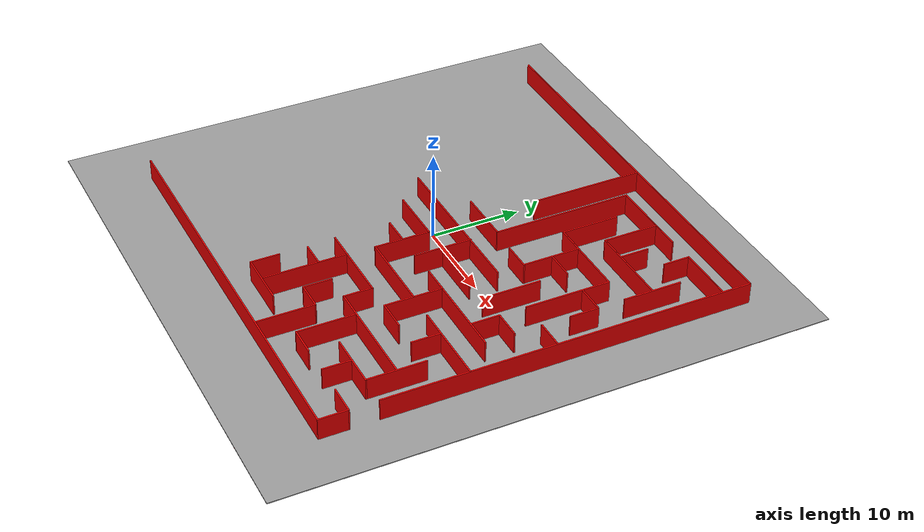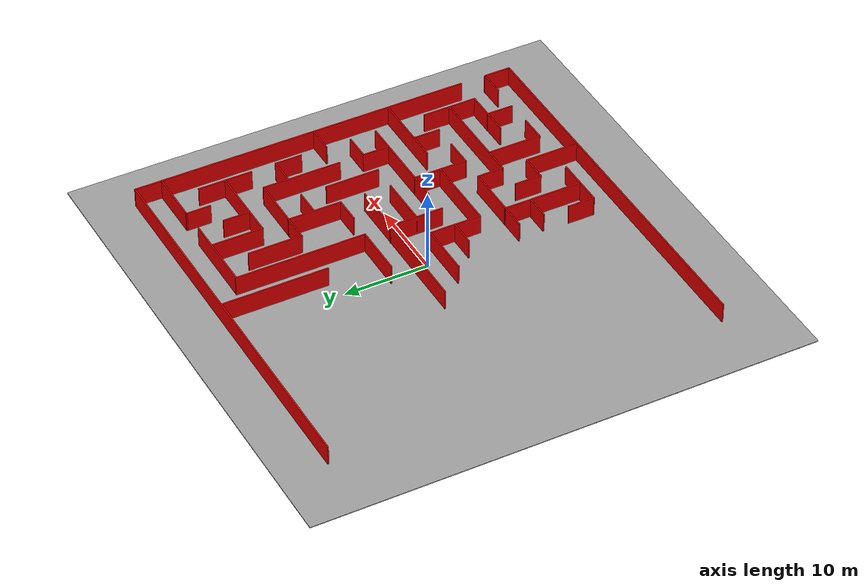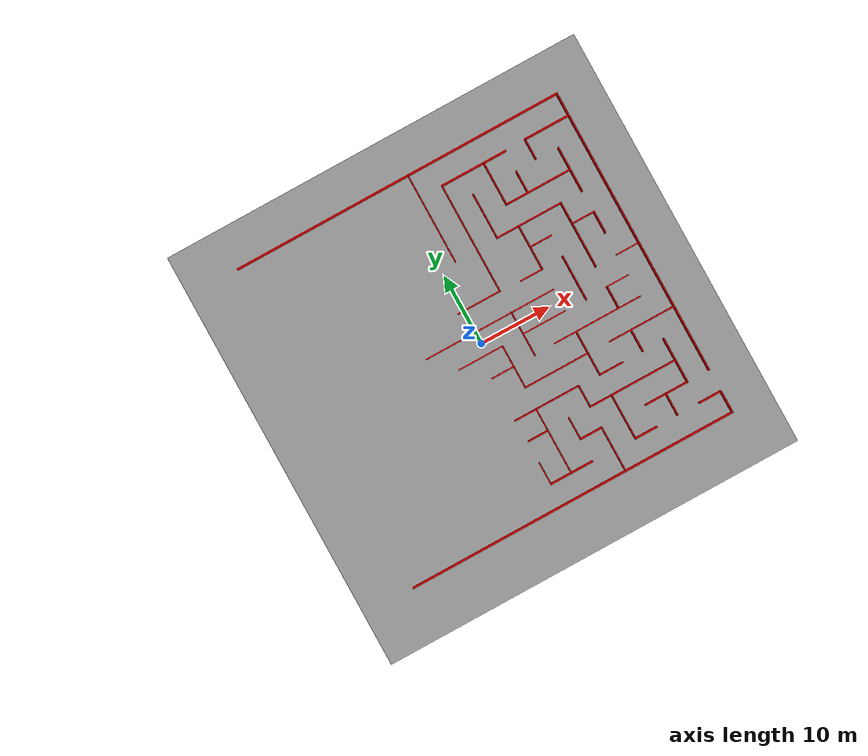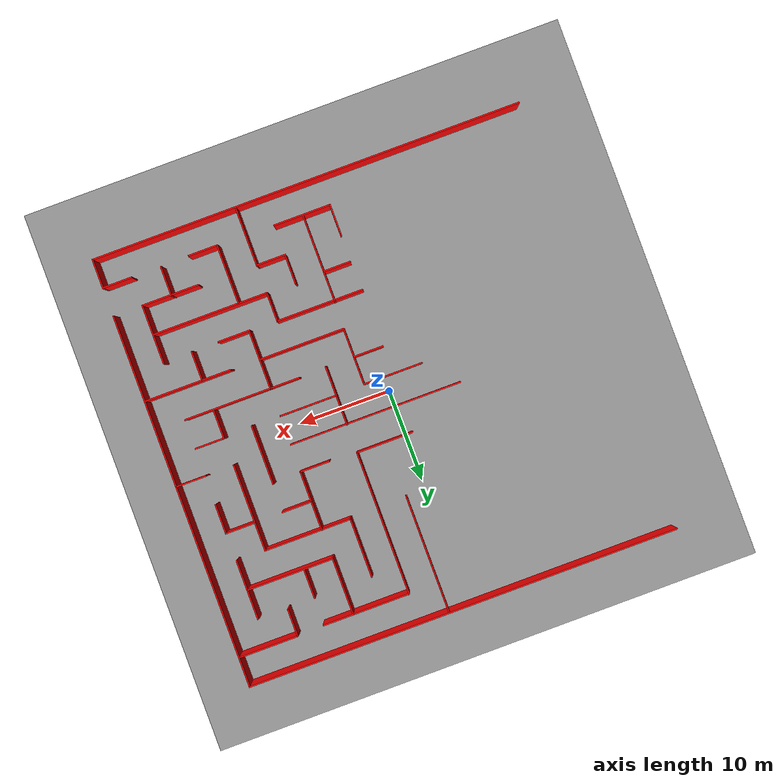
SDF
<sdf version="1.6">
 <world name="default">
  <model name="Final_Maze">
   <pose>-1.35978 -0.782493 0 0 -0 0</pose>
   <link name="Floor_0">
    <collision name="Floor_0_Collision">
     <geometry><box><size>60 60.01 0.1</size></box></geometry>
     <pose>0 0 0.05 0 -0 0</pose>
    </collision>
    <visual name="Floor_0_Visual">
     <pose>0 0 0.05 0 -0 0</pose>
     <geometry><box><size>60 60.01 0.1</size></box></geometry>
     <material>
      <script><uri>file://media/materials/scripts/gazebo.material</uri><name>Gazebo/Grey</name></script>
      <ambient>0 0 0 1</ambient>
     </material>
     <meta><layer>1</layer></meta>
    </visual>
    <pose>1.10022 0.122508 0.001 0 -0 0</pose>
   </link>
   <link name="Wall_10">
    <collision name="Wall_10_Collision">
     <geometry><box><size>47 0.15 2.5</size></box></geometry>
     <pose>0 0 1.25 0 -0 0</pose>
    </collision>
    <visual name="Wall_10_Visual">
     <pose>0 0 1.25 0 -0 0</pose>
     <geometry><box><size>47 0.15 2.5</size></box></geometry>
     <material>
      <script><uri>file://media/materials/scripts/gazebo.material</uri><name>Gazebo/Grey</name></script>
      <ambient>1 0 0 1</ambient>
     </material>
     <meta><layer>1</layer></meta>
    </visual>
    <pose>1.9402 -22.4994 0.001 0 -0 0</pose>
   </link>
   <link name="Wall_108">
    <collision name="Wall_108_Collision">
     <geometry><box><size>18.75 0.15 2.5</size></box></geometry>
     <pose>0 0 1.25 0 -0 0</pose>
    </collision>
    <visual name="Wall_108_Visual">
     <pose>0 0 1.25 0 -0 0</pose>
     <geometry><box><size>18.75 0.15 2.5</size></box></geometry>
     <material>
      <script><uri>file://media/materials/scripts/gazebo.material</uri><name>Gazebo/Grey</name></script>
      <ambient>1 0 0 1</ambient>
     </material>
     <meta><layer>1</layer></meta>
    </visual>
    <pose>3.48106 2.46818 0.001 0 -0 0</pose>
   </link>
   <link name="Wall_11">
    <collision name="Wall_11_Collision">
     <geometry><box><size>3.25 0.15 2.5</size></box></geometry>
     <pose>0 0 1.25 0 -0 0</pose>
    </collision>
    <visual name="Wall_11_Visual">
     <pose>0 0 1.25 0 -0 0</pose>
     <geometry><box><size>3.25 0.15 2.5</size></box></geometry>
     <material>
      <script><uri>file://media/materials/scripts/gazebo.material</uri><name>Gazebo/Grey</name></script>
      <ambient>1 0 0 1</ambient>
     </material>
     <meta><layer>1</layer></meta>
    </visual>
    <pose>25.3652 -20.9494 0.001 0 -0 1.5708</pose>
   </link>
   <link name="Wall_110">
    <collision name="Wall_110_Collision">
     <geometry><box><size>6.5 0.15 2.5</size></box></geometry>
     <pose>0 0 1.25 0 -0 0</pose>
    </collision>
    <visual name="Wall_110_Visual">
     <pose>0 0 1.25 0 -0 0</pose>
     <geometry><box><size>6.5 0.15 2.5</size></box></geometry>
     <material>
      <script><uri>file://media/materials/scripts/gazebo.material</uri><name>Gazebo/Grey</name></script>
      <ambient>1 0 0 1</ambient>
     </material>
     <meta><layer>1</layer></meta>
    </visual>
    <pose>6.64947 -0.643191 0.001 0 -0 -1.5708</pose>
   </link>
   <link name="Wall_112">
    <collision name="Wall_112_Collision">
     <geometry><box><size>6.25 0.15 2.5</size></box></geometry>
     <pose>0 0 1.25 0 -0 0</pose>
    </collision>
    <visual name="Wall_112_Visual">
     <pose>0 0 1.25 0 -0 0</pose>
     <geometry><box><size>6.25 0.15 2.5</size></box></geometry>
     <material>
      <script><uri>file://media/materials/scripts/gazebo.material</uri><name>Gazebo/Grey</name></script>
      <ambient>1 0 0 1</ambient>
     </material>
     <meta><layer>1</layer></meta>
    </visual>
    <pose>9.69947 -0.678341 0.001 0 -0 0</pose>
   </link>
   <link name="Wall_114">
    <collision name="Wall_114_Collision">
     <geometry><box><size>6.5 0.15 2.5</size></box></geometry>
     <pose>0 0 1.25 0 -0 0</pose>
    </collision>
    <visual name="Wall_114_Visual">
     <pose>0 0 1.25 0 -0 0</pose>
     <geometry><box><size>6.5 0.15 2.5</size></box></geometry>
     <material>
      <script><uri>file://media/materials/scripts/gazebo.material</uri><name>Gazebo/Grey</name></script>
      <ambient>1 0 0 1</ambient>
     </material>
     <meta><layer>1</layer></meta>
    </visual>
    <pose>15.9026 2.43389 0.001 0 -0 -1.5708</pose>
   </link>
   <link name="Wall_116">
    <collision name="Wall_116_Collision">
     <geometry><box><size>6.25 0.15 2.5</size></box></geometry>
     <pose>0 0 1.25 0 -0 0</pose>
    </collision>
    <visual name="Wall_116_Visual">
     <pose>0 0 1.25 0 -0 0</pose>
     <geometry><box><size>6.25 0.15 2.5</size></box></geometry>
     <material>
      <script><uri>file://media/materials/scripts/gazebo.material</uri><name>Gazebo/Grey</name></script>
      <ambient>1 0 0 1</ambient>
     </material>
     <meta><layer>1</layer></meta>
    </visual>
    <pose>3.63212 5.60889 0.001 0 -0 0</pose>
   </link>
   <link name="Wall_117">
    <collision name="Wall_117_Collision">
     <geometry><box><size>15.6407 0.15 2.5</size></box></geometry>
     <pose>0 0 1.25 0 -0 0</pose>
    </collision>
    <visual name="Wall_117_Visual">
     <pose>0 0 1.25 0 -0 0</pose>
     <geometry><box><size>15.6407 0.15 2.5</size></box></geometry>
     <material>
      <script><uri>file://media/materials/scripts/gazebo.material</uri><name>Gazebo/Grey</name></script>
      <ambient>1 0 0 1</ambient>
     </material>
     <meta><layer>1</layer></meta>
    </visual>
    <pose>6.68212 13.3542 0.001 0 -0 1.5708</pose>
   </link>
   <link name="Wall_118">
    <collision name="Wall_118_Collision">
     <geometry><box><size>9.5 0.15 2.5</size></box></geometry>
     <pose>0 0 1.25 0 -0 0</pose>
    </collision>
    <visual name="Wall_118_Visual">
     <pose>0 0 1.25 0 -0 0</pose>
     <geometry><box><size>9.5 0.15 2.5</size></box></geometry>
     <material>
      <script><uri>file://media/materials/scripts/gazebo.material</uri><name>Gazebo/Grey</name></script>
      <ambient>1 0 0 1</ambient>
     </material>
     <meta><layer>1</layer></meta>
    </visual>
    <pose>11.3571 21.0644 0.001 0 -0 0</pose>
   </link>
   <link name="Wall_12">
    <collision name="Wall_12_Collision">
     <geometry><box><size>3.25 0.15 2.5</size></box></geometry>
     <pose>0 0 1.25 0 -0 0</pose>
    </collision>
    <visual name="Wall_12_Visual">
     <pose>0 0 1.25 0 -0 0</pose>
     <geometry><box><size>3.25 0.15 2.5</size></box></geometry>
     <material>
      <script><uri>file://media/materials/scripts/gazebo.material</uri><name>Gazebo/Grey</name></script>
      <ambient>1 0 0 1</ambient>
     </material>
     <meta><layer>1</layer></meta>
    </visual>
    <pose>23.8152 -19.3994 0.001 0 -0 3.14159</pose>
   </link>
   <link name="Wall_120">
    <collision name="Wall_120_Collision">
     <geometry><box><size>3 0.15 2.5</size></box></geometry>
     <pose>0 0 1.25 0 -0 0</pose>
    </collision>
    <visual name="Wall_120_Visual">
     <pose>0 0 1.25 0 -0 0</pose>
     <geometry><box><size>3 0.15 2.5</size></box></geometry>
     <material>
      <script><uri>file://media/materials/scripts/gazebo.material</uri><name>Gazebo/Grey</name></script>
      <ambient>1 0 0 1</ambient>
     </material>
     <meta><layer>1</layer></meta>
    </visual>
    <pose>18.9322 19.7481 0.001 0 -0 1.5708</pose>
   </link>
   <link name="Wall_123">
    <collision name="Wall_123_Collision">
     <geometry><box><size>6.5 0.15 2.5</size></box></geometry>
     <pose>0 0 1.25 0 -0 0</pose>
    </collision>
    <visual name="Wall_123_Visual">
     <pose>0 0 1.25 0 -0 0</pose>
     <geometry><box><size>6.5 0.15 2.5</size></box></geometry>
     <material>
      <script><uri>file://media/materials/scripts/gazebo.material</uri><name>Gazebo/Grey</name></script>
      <ambient>1 0 0 1</ambient>
     </material>
     <meta><layer>1</layer></meta>
    </visual>
    <pose>22.1067 21.1714 0.001 0 -0 3.14159</pose>
   </link>
   <link name="Wall_125">
    <collision name="Wall_125_Collision">
     <geometry><box><size>6.25 0.15 2.5</size></box></geometry>
     <pose>0 0 1.25 0 -0 0</pose>
    </collision>
    <visual name="Wall_125_Visual">
     <pose>0 0 1.25 0 -0 0</pose>
     <geometry><box><size>6.25 0.15 2.5</size></box></geometry>
     <material>
      <script><uri>file://media/materials/scripts/gazebo.material</uri><name>Gazebo/Grey</name></script>
      <ambient>1 0 0 1</ambient>
     </material>
     <meta><layer>1</layer></meta>
    </visual>
    <pose>12.7989 18.0067 0.001 0 -0 -1.5708</pose>
   </link>
   <link name="Wall_126">
    <collision name="Wall_126_Collision">
     <geometry><box><size>9.5 0.15 2.5</size></box></geometry>
     <pose>0 0 1.25 0 -0 0</pose>
    </collision>
    <visual name="Wall_126_Visual">
     <pose>0 0 1.25 0 -0 0</pose>
     <geometry><box><size>9.5 0.15 2.5</size></box></geometry>
     <material>
      <script><uri>file://media/materials/scripts/gazebo.material</uri><name>Gazebo/Grey</name></script>
      <ambient>1 0 0 1</ambient>
     </material>
     <meta><layer>1</layer></meta>
    </visual>
    <pose>17.4739 14.9567 0.001 0 -0 0</pose>
   </link>
   <link name="Wall_128">
    <collision name="Wall_128_Collision">
     <geometry><box><size>3.25 0.15 2.5</size></box></geometry>
     <pose>0 0 1.25 0 -0 0</pose>
    </collision>
    <visual name="Wall_128_Visual">
     <pose>0 0 1.25 0 -0 0</pose>
     <geometry><box><size>3.25 0.15 2.5</size></box></geometry>
     <material>
      <script><uri>file://media/materials/scripts/gazebo.material</uri><name>Gazebo/Grey</name></script>
      <ambient>1 0 0 1</ambient>
     </material>
     <meta><layer>1</layer></meta>
    </visual>
    <pose>15.9497 16.5394 0.001 0 -0 -1.5708</pose>
   </link>
   <link name="Wall_130">
    <collision name="Wall_130_Collision">
     <geometry><box><size>6.5 0.15 2.5</size></box></geometry>
     <pose>0 0 1.25 0 -0 0</pose>
    </collision>
    <visual name="Wall_130_Visual">
     <pose>0 0 1.25 0 -0 0</pose>
     <geometry><box><size>6.5 0.15 2.5</size></box></geometry>
     <material>
      <script><uri>file://media/materials/scripts/gazebo.material</uri><name>Gazebo/Grey</name></script>
      <ambient>1 0 0 1</ambient>
     </material>
     <meta><layer>1</layer></meta>
    </visual>
    <pose>22.1595 14.945 0.001 0 -0 -1.5708</pose>
   </link>
   <link name="Wall_132">
    <collision name="Wall_132_Collision">
     <geometry><box><size>6.5 0.15 2.5</size></box></geometry>
     <pose>0 0 1.25 0 -0 0</pose>
    </collision>
    <visual name="Wall_132_Visual">
     <pose>0 0 1.25 0 -0 0</pose>
     <geometry><box><size>6.5 0.15 2.5</size></box></geometry>
     <material>
      <script><uri>file://media/materials/scripts/gazebo.material</uri><name>Gazebo/Grey</name></script>
      <ambient>1 0 0 1</ambient>
     </material>
     <meta><layer>1</layer></meta>
    </visual>
    <pose>9.67868 14.945 0.001 0 -0 -1.5708</pose>
   </link>
   <link name="Wall_133">
    <collision name="Wall_133_Collision">
     <geometry><box><size>9.5 0.15 2.5</size></box></geometry>
     <pose>0 0 1.25 0 -0 0</pose>
    </collision>
    <visual name="Wall_133_Visual">
     <pose>0 0 1.25 0 -0 0</pose>
     <geometry><box><size>9.5 0.15 2.5</size></box></geometry>
     <material>
      <script><uri>file://media/materials/scripts/gazebo.material</uri><name>Gazebo/Grey</name></script>
      <ambient>1 0 0 1</ambient>
     </material>
     <meta><layer>1</layer></meta>
    </visual>
    <pose>14.3537 11.77 0.001 0 -0 0</pose>
   </link>
   <link name="Wall_134">
    <collision name="Wall_134_Collision">
     <geometry><box><size>9.5 0.15 2.5</size></box></geometry>
     <pose>0 0 1.25 0 -0 0</pose>
    </collision>
    <visual name="Wall_134_Visual">
     <pose>0 0 1.25 0 -0 0</pose>
     <geometry><box><size>9.5 0.15 2.5</size></box></geometry>
     <material>
      <script><uri>file://media/materials/scripts/gazebo.material</uri><name>Gazebo/Grey</name></script>
      <ambient>1 0 0 1</ambient>
     </material>
     <meta><layer>1</layer></meta>
    </visual>
    <pose>19.0287 7.09502 0.001 0 -0 -1.5708</pose>
   </link>
   <link name="Wall_153">
    <collision name="Wall_153_Collision">
     <geometry><box><size>6.5 0.15 2.5</size></box></geometry>
     <pose>0 0 1.25 0 -0 0</pose>
    </collision>
    <visual name="Wall_153_Visual">
     <pose>0 0 1.25 0 -0 0</pose>
     <geometry><box><size>6.5 0.15 2.5</size></box></geometry>
     <material>
      <script><uri>file://media/materials/scripts/gazebo.material</uri><name>Gazebo/Grey</name></script>
      <ambient>1 0 0 1</ambient>
     </material>
     <meta><layer>1</layer></meta>
    </visual>
    <pose>12.8337 8.61794 0.001 0 -0 -1.5708</pose>
   </link>
   <link name="Wall_154">
    <collision name="Wall_154_Collision">
     <geometry><box><size>3.25 0.15 2.5</size></box></geometry>
     <pose>0 0 1.25 0 -0 0</pose>
    </collision>
    <visual name="Wall_154_Visual">
     <pose>0 0 1.25 0 -0 0</pose>
     <geometry><box><size>3.25 0.15 2.5</size></box></geometry>
     <material>
      <script><uri>file://media/materials/scripts/gazebo.material</uri><name>Gazebo/Grey</name></script>
      <ambient>1 0 0 1</ambient>
     </material>
     <meta><layer>1</layer></meta>
    </visual>
    <pose>11.2837 5.44294 0.001 0 -0 3.14159</pose>
   </link>
   <link name="Wall_156">
    <collision name="Wall_156_Collision">
     <geometry><box><size>3.25 0.15 2.5</size></box></geometry>
     <pose>0 0 1.25 0 -0 0</pose>
    </collision>
    <visual name="Wall_156_Visual">
     <pose>0 0 1.25 0 -0 0</pose>
     <geometry><box><size>3.25 0.15 2.5</size></box></geometry>
     <material>
      <script><uri>file://media/materials/scripts/gazebo.material</uri><name>Gazebo/Grey</name></script>
      <ambient>1 0 0 1</ambient>
     </material>
     <meta><layer>1</layer></meta>
    </visual>
    <pose>14.4239 8.69545 0.001 0 -0 0</pose>
   </link>
   <link name="Wall_18">
    <collision name="Wall_18_Collision">
     <geometry><box><size>3.25 0.15 2.5</size></box></geometry>
     <pose>0 0 1.25 0 -0 0</pose>
    </collision>
    <visual name="Wall_18_Visual">
     <pose>0 0 1.25 0 -0 0</pose>
     <geometry><box><size>3.25 0.15 2.5</size></box></geometry>
     <material>
      <script><uri>file://media/materials/scripts/gazebo.material</uri><name>Gazebo/Grey</name></script>
      <ambient>1 0 0 1</ambient>
     </material>
     <meta><layer>1</layer></meta>
    </visual>
    <pose>0.452914 -17.7919 0.001 0 -0 -1.5708</pose>
   </link>
   <link name="Wall_184">
    <collision name="Wall_184_Collision">
     <geometry><box><size>12.75 0.15 2.5</size></box></geometry>
     <pose>0 0 1.25 0 -0 0</pose>
    </collision>
    <visual name="Wall_184_Visual">
     <pose>0 0 1.25 0 -0 0</pose>
     <geometry><box><size>12.75 0.15 2.5</size></box></geometry>
     <material>
      <script><uri>file://media/materials/scripts/gazebo.material</uri><name>Gazebo/Grey</name></script>
      <ambient>1 0 0 1</ambient>
     </material>
     <meta><layer>1</layer></meta>
    </visual>
    <pose>3.48419 18.0248 0.001 0 -0 -1.5708</pose>
   </link>
   <link name="Wall_186">
    <collision name="Wall_186_Collision">
     <geometry><box><size>3.25 0.15 2.5</size></box></geometry>
     <pose>0 0 1.25 0 -0 0</pose>
    </collision>
    <visual name="Wall_186_Visual">
     <pose>0 0 1.25 0 -0 0</pose>
     <geometry><box><size>3.25 0.15 2.5</size></box></geometry>
     <material>
      <script><uri>file://media/materials/scripts/gazebo.material</uri><name>Gazebo/Grey</name></script>
      <ambient>1 0 0 1</ambient>
     </material>
     <meta><layer>1</layer></meta>
    </visual>
    <pose>20.6558 8.72552 0.001 0 -0 0</pose>
   </link>
   <link name="Wall_187">
    <collision name="Wall_187_Collision">
     <geometry><box><size>3.25 0.15 2.5</size></box></geometry>
     <pose>0 0 1.25 0 -0 0</pose>
    </collision>
    <visual name="Wall_187_Visual">
     <pose>0 0 1.25 0 -0 0</pose>
     <geometry><box><size>3.25 0.15 2.5</size></box></geometry>
     <material>
      <script><uri>file://media/materials/scripts/gazebo.material</uri><name>Gazebo/Grey</name></script>
      <ambient>1 0 0 1</ambient>
     </material>
     <meta><layer>1</layer></meta>
    </visual>
    <pose>22.2058 7.17552 0.001 0 -0 -1.5708</pose>
   </link>
   <link name="Wall_189">
    <collision name="Wall_189_Collision">
     <geometry><box><size>3.25 0.15 2.5</size></box></geometry>
     <pose>0 0 1.25 0 -0 0</pose>
    </collision>
    <visual name="Wall_189_Visual">
     <pose>0 0 1.25 0 -0 0</pose>
     <geometry><box><size>3.25 0.15 2.5</size></box></geometry>
     <material>
      <script><uri>file://media/materials/scripts/gazebo.material</uri><name>Gazebo/Grey</name></script>
      <ambient>1 0 0 1</ambient>
     </material>
     <meta><layer>1</layer></meta>
    </visual>
    <pose>23.7224 2.46009 0.001 0 -0 3.14159</pose>
   </link>
   <link name="Wall_19">
    <collision name="Wall_19_Collision">
     <geometry><box><size>6.25 0.15 2.5</size></box></geometry>
     <pose>0 0 1.25 0 -0 0</pose>
    </collision>
    <visual name="Wall_19_Visual">
     <pose>0 0 1.25 0 -0 0</pose>
     <geometry><box><size>6.25 0.15 2.5</size></box></geometry>
     <material>
      <script><uri>file://media/materials/scripts/gazebo.material</uri><name>Gazebo/Grey</name></script>
      <ambient>1 0 0 1</ambient>
     </material>
     <meta><layer>1</layer></meta>
    </visual>
    <pose>3.50291 -19.3419 0.001 0 -0 0</pose>
   </link>
   <link name="Wall_2">
    <collision name="Wall_2_Collision">
     <geometry><box><size>60.01 60 0.001</size></box></geometry>
     <pose>0 0 0.0005 0 -0 0</pose>
    </collision>
    <visual name="Wall_2_Visual">
     <pose>0 0 0.0005 0 -0 0</pose>
     <geometry><box><size>60.01 60 0.001</size></box></geometry>
     <material>
      <script><uri>file://media/materials/scripts/gazebo.material</uri><name>Gazebo/Grey</name></script>
      <ambient>1 0 0 1</ambient>
     </material>
     <meta><layer>1</layer></meta>
    </visual>
    <pose>1.10022 0.122508 0.001 0 -0 -1.5708</pose>
   </link>
   <link name="Wall_24">
    <collision name="Wall_24_Collision">
     <geometry><box><size>3.25 0.15 2.5</size></box></geometry>
     <pose>0 0 1.25 0 -0 0</pose>
    </collision>
    <visual name="Wall_24_Visual">
     <pose>0 0 1.25 0 -0 0</pose>
     <geometry><box><size>3.25 0.15 2.5</size></box></geometry>
     <material>
      <script><uri>file://media/materials/scripts/gazebo.material</uri><name>Gazebo/Grey</name></script>
      <ambient>1 0 0 1</ambient>
     </material>
     <meta><layer>1</layer></meta>
    </visual>
    <pose>6.5839 -14.5575 0.001 0 -0 -1.5708</pose>
   </link>
   <link name="Wall_25">
    <collision name="Wall_25_Collision">
     <geometry><box><size>3.25 0.15 2.5</size></box></geometry>
     <pose>0 0 1.25 0 -0 0</pose>
    </collision>
    <visual name="Wall_25_Visual">
     <pose>0 0 1.25 0 -0 0</pose>
     <geometry><box><size>3.25 0.15 2.5</size></box></geometry>
     <material>
      <script><uri>file://media/materials/scripts/gazebo.material</uri><name>Gazebo/Grey</name></script>
      <ambient>1 0 0 1</ambient>
     </material>
     <meta><layer>1</layer></meta>
    </visual>
    <pose>8.13391 -16.1075 0.001 0 -0 0</pose>
   </link>
   <link name="Wall_26">
    <collision name="Wall_26_Collision">
     <geometry><box><size>6.5 0.15 2.5</size></box></geometry>
     <pose>0 0 1.25 0 -0 0</pose>
    </collision>
    <visual name="Wall_26_Visual">
     <pose>0 0 1.25 0 -0 0</pose>
     <geometry><box><size>6.5 0.15 2.5</size></box></geometry>
     <material>
      <script><uri>file://media/materials/scripts/gazebo.material</uri><name>Gazebo/Grey</name></script>
      <ambient>1 0 0 1</ambient>
     </material>
     <meta><layer>1</layer></meta>
    </visual>
    <pose>9.6839 -19.2825 0.001 0 -0 -1.5708</pose>
   </link>
   <link name="Wall_28">
    <collision name="Wall_28_Collision">
     <geometry><box><size>9.5 0.15 2.5</size></box></geometry>
     <pose>0 0 1.25 0 -0 0</pose>
    </collision>
    <visual name="Wall_28_Visual">
     <pose>0 0 1.25 0 -0 0</pose>
     <geometry><box><size>9.5 0.15 2.5</size></box></geometry>
     <material>
      <script><uri>file://media/materials/scripts/gazebo.material</uri><name>Gazebo/Grey</name></script>
      <ambient>1 0 0 1</ambient>
     </material>
     <meta><layer>1</layer></meta>
    </visual>
    <pose>3.43569 -14.6042 0.001 0 -0 -1.5708</pose>
   </link>
   <link name="Wall_30">
    <collision name="Wall_30_Collision">
     <geometry><box><size>3 0.15 2.5</size></box></geometry>
     <pose>0 0 1.25 0 -0 0</pose>
    </collision>
    <visual name="Wall_30_Visual">
     <pose>0 0 1.25 0 -0 0</pose>
     <geometry><box><size>3 0.15 2.5</size></box></geometry>
     <material>
      <script><uri>file://media/materials/scripts/gazebo.material</uri><name>Gazebo/Grey</name></script>
      <ambient>1 0 0 1</ambient>
     </material>
     <meta><layer>1</layer></meta>
    </visual>
    <pose>1.97571 -13.1124 0.001 0 -0 3.14159</pose>
   </link>
   <link name="Wall_33">
    <collision name="Wall_33_Collision">
     <geometry><box><size>9.5 0.15 2.5</size></box></geometry>
     <pose>0 0 1.25 0 -0 0</pose>
    </collision>
    <visual name="Wall_33_Visual">
     <pose>0 0 1.25 0 -0 0</pose>
     <geometry><box><size>9.5 0.15 2.5</size></box></geometry>
     <material>
      <script><uri>file://media/materials/scripts/gazebo.material</uri><name>Gazebo/Grey</name></script>
      <ambient>1 0 0 1</ambient>
     </material>
     <meta><layer>1</layer></meta>
    </visual>
    <pose>5.01451 -9.96309 0.001 0 -0 0</pose>
   </link>
   <link name="Wall_34">
    <collision name="Wall_34_Collision">
     <geometry><box><size>3.25 0.15 2.5</size></box></geometry>
     <pose>0 0 1.25 0 -0 0</pose>
    </collision>
    <visual name="Wall_34_Visual">
     <pose>0 0 1.25 0 -0 0</pose>
     <geometry><box><size>3.25 0.15 2.5</size></box></geometry>
     <material>
      <script><uri>file://media/materials/scripts/gazebo.material</uri><name>Gazebo/Grey</name></script>
      <ambient>1 0 0 1</ambient>
     </material>
     <meta><layer>1</layer></meta>
    </visual>
    <pose>9.68951 -11.5131 0.001 0 -0 -1.5708</pose>
   </link>
   <link name="Wall_35">
    <collision name="Wall_35_Collision">
     <geometry><box><size>12.5 0.15 2.5</size></box></geometry>
     <pose>0 0 1.25 0 -0 0</pose>
    </collision>
    <visual name="Wall_35_Visual">
     <pose>0 0 1.25 0 -0 0</pose>
     <geometry><box><size>12.5 0.15 2.5</size></box></geometry>
     <material>
      <script><uri>file://media/materials/scripts/gazebo.material</uri><name>Gazebo/Grey</name></script>
      <ambient>1 0 0 1</ambient>
     </material>
     <meta><layer>1</layer></meta>
    </visual>
    <pose>15.8645 -13.0631 0.001 0 -0 0</pose>
   </link>
   <link name="Wall_37">
    <collision name="Wall_37_Collision">
     <geometry><box><size>6.5 0.15 2.5</size></box></geometry>
     <pose>0 0 1.25 0 -0 0</pose>
    </collision>
    <visual name="Wall_37_Visual">
     <pose>0 0 1.25 0 -0 0</pose>
     <geometry><box><size>6.5 0.15 2.5</size></box></geometry>
     <material>
      <script><uri>file://media/materials/scripts/gazebo.material</uri><name>Gazebo/Grey</name></script>
      <ambient>1 0 0 1</ambient>
     </material>
     <meta><layer>1</layer></meta>
    </visual>
    <pose>12.8107 -16.2737 0.001 0 -0 -1.5708</pose>
   </link>
   <link name="Wall_38">
    <collision name="Wall_38_Collision">
     <geometry><box><size>3.25 0.15 2.5</size></box></geometry>
     <pose>0 0 1.25 0 -0 0</pose>
    </collision>
    <visual name="Wall_38_Visual">
     <pose>0 0 1.25 0 -0 0</pose>
     <geometry><box><size>3.25 0.15 2.5</size></box></geometry>
     <material>
      <script><uri>file://media/materials/scripts/gazebo.material</uri><name>Gazebo/Grey</name></script>
      <ambient>1 0 0 1</ambient>
     </material>
     <meta><layer>1</layer></meta>
    </visual>
    <pose>14.3607 -19.4487 0.001 0 -0 0</pose>
   </link>
   <link name="Wall_40">
    <collision name="Wall_40_Collision">
     <geometry><box><size>6.5 0.15 2.5</size></box></geometry>
     <pose>0 0 1.25 0 -0 0</pose>
    </collision>
    <visual name="Wall_40_Visual">
     <pose>0 0 1.25 0 -0 0</pose>
     <geometry><box><size>6.5 0.15 2.5</size></box></geometry>
     <material>
      <script><uri>file://media/materials/scripts/gazebo.material</uri><name>Gazebo/Grey</name></script>
      <ambient>1 0 0 1</ambient>
     </material>
     <meta><layer>1</layer></meta>
    </visual>
    <pose>22.1793 -13.1103 0.001 0 -0 -1.5708</pose>
   </link>
   <link name="Wall_41">
    <collision name="Wall_41_Collision">
     <geometry><box><size>6.25 0.15 2.5</size></box></geometry>
     <pose>0 0 1.25 0 -0 0</pose>
    </collision>
    <visual name="Wall_41_Visual">
     <pose>0 0 1.25 0 -0 0</pose>
     <geometry><box><size>6.25 0.15 2.5</size></box></geometry>
     <material>
      <script><uri>file://media/materials/scripts/gazebo.material</uri><name>Gazebo/Grey</name></script>
      <ambient>1 0 0 1</ambient>
     </material>
     <meta><layer>1</layer></meta>
    </visual>
    <pose>19.1293 -16.2853 0.001 0 -0 3.14159</pose>
   </link>
   <link name="Wall_43">
    <collision name="Wall_43_Collision">
     <geometry><box><size>3.25 0.15 2.5</size></box></geometry>
     <pose>0 0 1.25 0 -0 0</pose>
    </collision>
    <visual name="Wall_43_Visual">
     <pose>0 0 1.25 0 -0 0</pose>
     <geometry><box><size>3.25 0.15 2.5</size></box></geometry>
     <material>
      <script><uri>file://media/materials/scripts/gazebo.material</uri><name>Gazebo/Grey</name></script>
      <ambient>1 0 0 1</ambient>
     </material>
     <meta><layer>1</layer></meta>
    </visual>
    <pose>19.0159 -17.8121 0.001 0 -0 -1.5708</pose>
   </link>
   <link name="Wall_55">
    <collision name="Wall_55_Collision">
     <geometry><box><size>47 0.15 2.5</size></box></geometry>
     <pose>0 0 1.25 0 -0 0</pose>
    </collision>
    <visual name="Wall_55_Visual">
     <pose>0 0 1.25 0 -0 0</pose>
     <geometry><box><size>47 0.15 2.5</size></box></geometry>
     <material>
      <script><uri>file://media/materials/scripts/gazebo.material</uri><name>Gazebo/Grey</name></script>
      <ambient>1 0 0 1</ambient>
     </material>
     <meta><layer>1</layer></meta>
    </visual>
    <pose>1.93531 24.3526 0.001 0 -0 0</pose>
   </link>
   <link name="Wall_56">
    <collision name="Wall_56_Collision">
     <geometry><box><size>40.75 0.15 2.5</size></box></geometry>
     <pose>0 0 1.25 0 -0 0</pose>
    </collision>
    <visual name="Wall_56_Visual">
     <pose>0 0 1.25 0 -0 0</pose>
     <geometry><box><size>40.75 0.15 2.5</size></box></geometry>
     <material>
      <script><uri>file://media/materials/scripts/gazebo.material</uri><name>Gazebo/Grey</name></script>
      <ambient>1 0 0 1</ambient>
     </material>
     <meta><layer>1</layer></meta>
    </visual>
    <pose>25.3603 4.05265 0.001 0 -0 -1.5708</pose>
   </link>
   <link name="Wall_67">
    <collision name="Wall_67_Collision">
     <geometry><box><size>6.5 0.15 2.5</size></box></geometry>
     <pose>0 0 1.25 0 -0 0</pose>
    </collision>
    <visual name="Wall_67_Visual">
     <pose>0 0 1.25 0 -0 0</pose>
     <geometry><box><size>6.5 0.15 2.5</size></box></geometry>
     <material>
      <script><uri>file://media/materials/scripts/gazebo.material</uri><name>Gazebo/Grey</name></script>
      <ambient>1 0 0 1</ambient>
     </material>
     <meta><layer>1</layer></meta>
    </visual>
    <pose>0.388056 -0.760026 0.001 0 -0 0</pose>
   </link>
   <link name="Wall_68">
    <collision name="Wall_68_Collision">
     <geometry><box><size>6.25 0.15 2.5</size></box></geometry>
     <pose>0 0 1.25 0 -0 0</pose>
    </collision>
    <visual name="Wall_68_Visual">
     <pose>0 0 1.25 0 -0 0</pose>
     <geometry><box><size>6.25 0.15 2.5</size></box></geometry>
     <material>
      <script><uri>file://media/materials/scripts/gazebo.material</uri><name>Gazebo/Grey</name></script>
      <ambient>1 0 0 1</ambient>
     </material>
     <meta><layer>1</layer></meta>
    </visual>
    <pose>3.56306 -3.81003 0.001 0 -0 -1.5708</pose>
   </link>
   <link name="Wall_69">
    <collision name="Wall_69_Collision">
     <geometry><box><size>9.25 0.15 2.5</size></box></geometry>
     <pose>0 0 1.25 0 -0 0</pose>
    </collision>
    <visual name="Wall_69_Visual">
     <pose>0 0 1.25 0 -0 0</pose>
     <geometry><box><size>9.25 0.15 2.5</size></box></geometry>
     <material>
      <script><uri>file://media/materials/scripts/gazebo.material</uri><name>Gazebo/Grey</name></script>
      <ambient>1 0 0 1</ambient>
     </material>
     <meta><layer>1</layer></meta>
    </visual>
    <pose>8.11306 -6.86003 0.001 0 -0 0</pose>
   </link>
   <link name="Wall_71">
    <collision name="Wall_71_Collision">
     <geometry><box><size>6.5 0.15 2.5</size></box></geometry>
     <pose>0 0 1.25 0 -0 0</pose>
    </collision>
    <visual name="Wall_71_Visual">
     <pose>0 0 1.25 0 -0 0</pose>
     <geometry><box><size>6.5 0.15 2.5</size></box></geometry>
     <material>
      <script><uri>file://media/materials/scripts/gazebo.material</uri><name>Gazebo/Grey</name></script>
      <ambient>1 0 0 1</ambient>
     </material>
     <meta><layer>1</layer></meta>
    </visual>
    <pose>12.7621 -6.87447 0.001 0 -0 1.5708</pose>
   </link>
   <link name="Wall_72">
    <collision name="Wall_72_Collision">
     <geometry><box><size>3.25 0.15 2.5</size></box></geometry>
     <pose>0 0 1.25 0 -0 0</pose>
    </collision>
    <visual name="Wall_72_Visual">
     <pose>0 0 1.25 0 -0 0</pose>
     <geometry><box><size>3.25 0.15 2.5</size></box></geometry>
     <material>
      <script><uri>file://media/materials/scripts/gazebo.material</uri><name>Gazebo/Grey</name></script>
      <ambient>1 0 0 1</ambient>
     </material>
     <meta><layer>1</layer></meta>
    </visual>
    <pose>11.2121 -3.69947 0.001 0 -0 3.14159</pose>
   </link>
   <link name="Wall_74">
    <collision name="Wall_74_Collision">
     <geometry><box><size>9.5 0.15 2.5</size></box></geometry>
     <pose>0 0 1.25 0 -0 0</pose>
    </collision>
    <visual name="Wall_74_Visual">
     <pose>0 0 1.25 0 -0 0</pose>
     <geometry><box><size>9.5 0.15 2.5</size></box></geometry>
     <material>
      <script><uri>file://media/materials/scripts/gazebo.material</uri><name>Gazebo/Grey</name></script>
      <ambient>1 0 0 1</ambient>
     </material>
     <meta><layer>1</layer></meta>
    </visual>
    <pose>17.4371 -3.69947 0.001 0 -0 0</pose>
   </link>
   <link name="Wall_76">
    <collision name="Wall_76_Collision">
     <geometry><box><size>3.25 0.15 2.5</size></box></geometry>
     <pose>0 0 1.25 0 -0 0</pose>
    </collision>
    <visual name="Wall_76_Visual">
     <pose>0 0 1.25 0 -0 0</pose>
     <geometry><box><size>3.25 0.15 2.5</size></box></geometry>
     <material>
      <script><uri>file://media/materials/scripts/gazebo.material</uri><name>Gazebo/Grey</name></script>
      <ambient>1 0 0 1</ambient>
     </material>
     <meta><layer>1</layer></meta>
    </visual>
    <pose>19.0239 -2.09694 0.001 0 -0 1.5708</pose>
   </link>
   <link name="Wall_77">
    <collision name="Wall_77_Collision">
     <geometry><box><size>3.25 0.15 2.5</size></box></geometry>
     <pose>0 0 1.25 0 -0 0</pose>
    </collision>
    <visual name="Wall_77_Visual">
     <pose>0 0 1.25 0 -0 0</pose>
     <geometry><box><size>3.25 0.15 2.5</size></box></geometry>
     <material>
      <script><uri>file://media/materials/scripts/gazebo.material</uri><name>Gazebo/Grey</name></script>
      <ambient>1 0 0 1</ambient>
     </material>
     <meta><layer>1</layer></meta>
    </visual>
    <pose>20.5739 -0.546939 0.001 0 -0 0</pose>
   </link>
   <link name="Wall_79">
    <collision name="Wall_79_Collision">
     <geometry><box><size>3.5 0.15 2.5</size></box></geometry>
     <pose>0 0 1.25 0 -0 0</pose>
    </collision>
    <visual name="Wall_79_Visual">
     <pose>0 0 1.25 0 -0 0</pose>
     <geometry><box><size>3.5 0.15 2.5</size></box></geometry>
     <material>
      <script><uri>file://media/materials/scripts/gazebo.material</uri><name>Gazebo/Grey</name></script>
      <ambient>1 0 0 1</ambient>
     </material>
     <meta><layer>1</layer></meta>
    </visual>
    <pose>14.4371 -10.0495 0.001 0 -0 0</pose>
   </link>
   <link name="Wall_81">
    <collision name="Wall_81_Collision">
     <geometry><box><size>9.5 0.15 2.5</size></box></geometry>
     <pose>0 0 1.25 0 -0 0</pose>
    </collision>
    <visual name="Wall_81_Visual">
     <pose>0 0 1.25 0 -0 0</pose>
     <geometry><box><size>9.5 0.15 2.5</size></box></geometry>
     <material>
      <script><uri>file://media/materials/scripts/gazebo.material</uri><name>Gazebo/Grey</name></script>
      <ambient>1 0 0 1</ambient>
     </material>
     <meta><layer>1</layer></meta>
    </visual>
    <pose>20.6383 -6.91856 0.001 0 -0 0</pose>
   </link>
   <link name="Wall_83">
    <collision name="Wall_83_Collision">
     <geometry><box><size>3.25 0.15 2.5</size></box></geometry>
     <pose>0 0 1.25 0 -0 0</pose>
    </collision>
    <visual name="Wall_83_Visual">
     <pose>0 0 1.25 0 -0 0</pose>
     <geometry><box><size>3.25 0.15 2.5</size></box></geometry>
     <material>
      <script><uri>file://media/materials/scripts/gazebo.material</uri><name>Gazebo/Grey</name></script>
      <ambient>1 0 0 1</ambient>
     </material>
     <meta><layer>1</layer></meta>
    </visual>
    <pose>19.0591 -8.50374 0.001 0 -0 -1.5708</pose>
   </link>
   <link name="Wall_85">
    <collision name="Wall_85_Collision">
     <geometry><box><size>3.25 0.15 2.5</size></box></geometry>
     <pose>0 0 1.25 0 -0 0</pose>
    </collision>
    <visual name="Wall_85_Visual">
     <pose>0 0 1.25 0 -0 0</pose>
     <geometry><box><size>3.25 0.15 2.5</size></box></geometry>
     <material>
      <script><uri>file://media/materials/scripts/gazebo.material</uri><name>Gazebo/Grey</name></script>
      <ambient>1 0 0 1</ambient>
     </material>
     <meta><layer>1</layer></meta>
    </visual>
    <pose>1.9611 -3.77053 0.001 0 -0 3.14159</pose>
   </link>
   <static>1</static>
  </model>
 </world>
</sdf>
